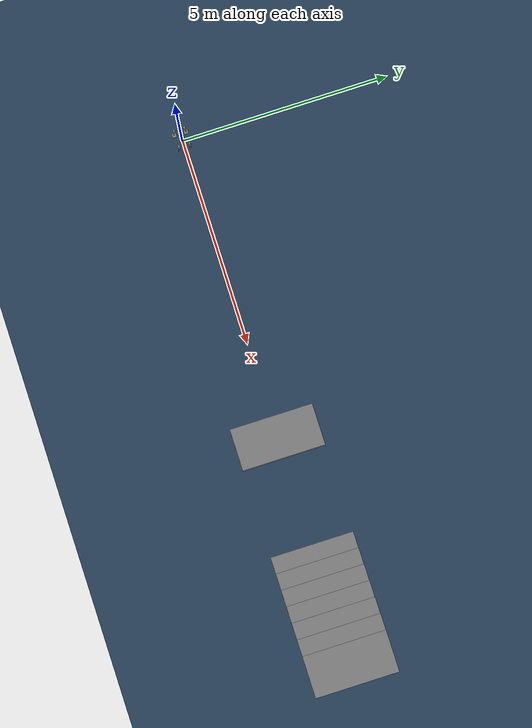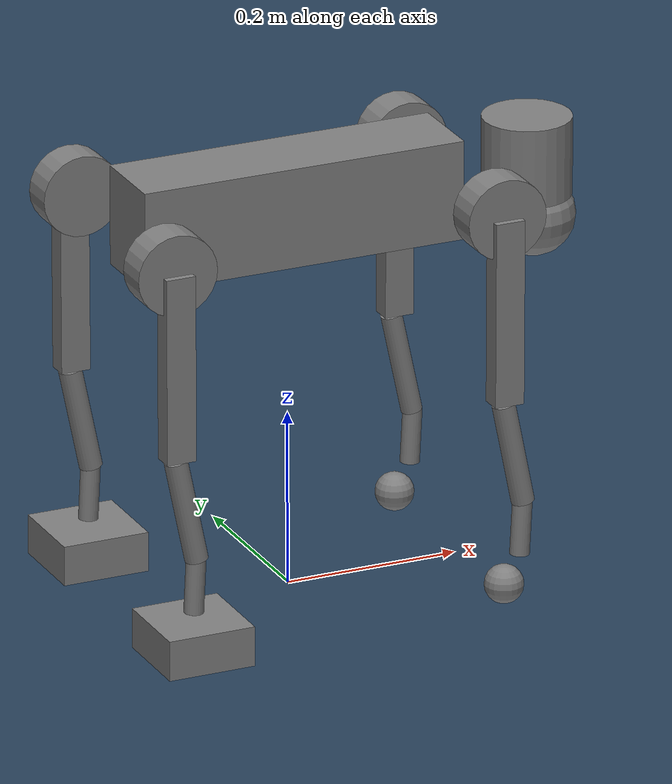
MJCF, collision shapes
<mujoco model="go2 biped scene">
  <include file="go2_biped.xml"/>

  <statistic center="0 0 0.1" extent="0.8"/>

  <visual>
    <headlight diffuse="0.6 0.6 0.6" ambient="0.3 0.3 0.3" specular="0 0 0"/>
    <rgba haze="0.15 0.25 0.35 1"/>
    <global azimuth="-130" elevation="-20"/>
  </visual>

  <asset>
    <texture type="skybox" builtin="gradient" rgb1="0.3 0.5 0.7" rgb2="0 0 0" width="512" height="3072"/>
    <texture type="2d" name="groundplane" builtin="checker" mark="edge" rgb1="0.2 0.3 0.4" rgb2="0.1 0.2 0.3"
      markrgb="0.8 0.8 0.8" width="300" height="300"/>
    <material name="groundplane" texture="groundplane" texuniform="true" texrepeat="5 5" reflectance="0.2"/>
  </asset>

  <worldbody>
    <light pos="0 0 1.5" dir="0 0 -1" directional="true"/>
    <geom name="floor" size="0 0 0.05" type="plane" material="groundplane"/>

    <!-- Slope -->
      <body name="single_staircase" pos="7 0 0.12">
            <geom type="box" size="0.5 1 0.12" pos="0.3 0 0.0" rgba="0.5 0.5 0.5 1"/>
      </body>

      <body name="staircases" pos="10 0 0.075">
            <geom type="box" size="0.5 1 0.075" pos="0.4 0 0.0" rgba="0.5 0.5 0.5 1"/>
            <geom type="box" size="0.5 1 0.075" pos="0.8 0 0.15" rgba="0.5 0.5 0.5 1"/>
            <geom type="box" size="0.5 1 0.075" pos="1.2 0 0.3" rgba="0.5 0.5 0.5 1"/>
            <geom type="box" size="0.5 1 0.075" pos="1.6 0 0.45" rgba="0.5 0.5 0.5 1"/>
            <geom type="box" size="0.5 1 0.075" pos="2.0 0 0.6" rgba="0.5 0.5 0.5 1"/>
            <geom type="box" size="0.5 1 0.075" pos="2.4 0 0.75" rgba="0.5 0.5 0.5 1"/>
            <geom type="box" size="0.5 1 0.075" pos="2.8 0 0.9" rgba="0.5 0.5 0.5 1"/>
      </body>

  </worldbody>
</mujoco>

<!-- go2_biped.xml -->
<mujoco model="go2">
  <compiler angle="radian" meshdir="assets" autolimits="true" eulerseq="xyz" />

  <option cone="elliptic" impratio="100" />

  <default>
    <default class="go2">
      <geom friction="0.4" margin="0.001" condim="1"/>
      <joint axis="0 1 0" damping="0.1" armature="0.01" frictionloss="0.2"/>
      <motor ctrlrange="-23.7 23.7"/>
      <default class="abduction">
        <joint axis="1 0 0" range="-1.0472 1.0472"/>
      </default>
      <default class="hip">
        <default class="front_hip">
          <joint range="-1.5708 3.4907"/>
        </default>
        <default class="back_hip">
          <joint range="-0.5236 4.5379"/>
        </default>
      </default>
      <default class="knee">
        <joint range="-2.7227 -0.83776"/>
        <motor ctrlrange="-45.43 45.43"/>
      </default>
      <default class="visual">
        <geom type="mesh" contype="0" conaffinity="0" group="2"/>
      </default>
      <default class="collision">
        <geom group="3"/>
        <default class="foot_static">
          <geom size="0.022" pos="-0.002 0 -0.213" priority="1" condim="6"
            friction="0.6 0.02 0.01"/>
        </default>
        <default class="foot">
          <geom type="box" size="0.05 0.05 0.026" pos="0.018 0 -0.213" priority="1" condim="6"
            friction="0.6 0.02 0.01"/>
          <motor ctrlrange="-10.0 10.0"/>
          <joint range="-0.3 0.8"/>
        </default>
      </default>
    </default>
  </default>

  <asset>
    <material name="metal" rgba=".9 .95 .95 1" />
    <material name="black" rgba="0 0 0 1" />
    <material name="white" rgba="1 1 1 1" />
    <material name="gray" rgba="0.671705 0.692426 0.774270 1" />

    <mesh file="base_0.obj" />
    <mesh file="base_1.obj" />
    <mesh file="base_2.obj" />
    <mesh file="base_3.obj" />
    <mesh file="base_4.obj" />
    <mesh file="hip_0.obj" />
    <mesh file="hip_1.obj" />
    <mesh file="thigh_0.obj" />
    <mesh file="thigh_1.obj" />
    <mesh file="thigh_mirror_0.obj" />
    <mesh file="thigh_mirror_1.obj" />
    <mesh file="calf_0.obj" />
    <mesh file="calf_1.obj" />
    <mesh file="calf_mirror_0.obj" />
    <mesh file="calf_mirror_1.obj" />
    <mesh file="foot_static.obj" />
    <mesh file="foot.obj" />
  </asset>

  <worldbody>
    <body name="base_link" pos="0 0 0.445" childclass="go2">
      <inertial pos="0.021112 0 -0.005366" quat="-0.000543471 0.713435 -0.00173769 0.700719"
        mass="6.921"
        diaginertia="0.107027 0.0980771 0.0244531" />
      <freejoint />
      <geom mesh="base_0" material="black" class="visual" />
      <geom mesh="base_1" material="black" class="visual" />
      <geom mesh="base_2" material="black" class="visual" />
      <geom mesh="base_3" material="white" class="visual" />
      <geom mesh="base_4" material="gray" class="visual" />
      <geom size="0.1881 0.04675 0.057" type="box" class="collision" />
      <geom size="0.05 0.045" pos="0.285 0 0.01" type="cylinder" class="collision" />
      <geom size="0.047" pos="0.293 0 -0.06" class="collision" />
      <site name="imu" pos="-0.02557 0 0.04232" />
      <camera name="depth_camera" pos="0.315 0 0.09" euler="0 -1.57 -1.57" mode="fixed"
              fovy="62"/>
      <body name="FL_hip" pos="0.1934 0.0465 0">
        <inertial pos="-0.0054 0.00194 -0.000105" quat="0.497014 0.499245 0.505462 0.498237"
          mass="0.678"
          diaginertia="0.00088403 0.000596003 0.000479967" />
        <joint name="FL_hip_joint" class="abduction" />
        <geom mesh="hip_0" material="metal" class="visual" />
        <geom mesh="hip_1" material="gray" class="visual" />
        <geom size="0.046 0.02" pos="0 0.08 0" quat="1 1 0 0" type="cylinder" class="collision" />
        <body name="FL_thigh" pos="0 0.0955 0">
          <inertial pos="-0.00374 -0.0223 -0.0327" quat="0.829533 0.0847635 -0.0200632 0.551623"
            mass="1.152"
            diaginertia="0.00594973 0.00584149 0.000878787" />
          <joint name="FL_thigh_joint" class="front_hip" />
          <geom mesh="thigh_0" material="metal" class="visual" />
          <geom mesh="thigh_1" material="gray" class="visual" />
          <geom size="0.1065 0.01225 0.017" pos="0 0 -0.1065" quat="0.707107 0 0.707107 0"
            type="box" class="collision" />
          <body name="FL_calf" pos="0 0 -0.213">
            <inertial pos="0.00629595 -0.000622121 -0.141417"
              quat="0.710672 0.00154099 -0.00450087 0.703508"
              mass="0.241352" diaginertia="0.0014901 0.00146356 5.31397e-05" />
            <joint name="FL_calf_joint" class="knee" />
            <geom mesh="calf_0" material="gray" class="visual" />
            <geom mesh="calf_1" material="black" class="visual" />
            <geom size="0.012 0.06" pos="0.008 0 -0.06" quat="0.994493 0 -0.104807 0"
              type="cylinder" class="collision" />
            <geom size="0.011 0.0325" pos="0.02 0 -0.148" quat="0.999688 0 0.0249974 0"
              type="cylinder" class="collision" />
            <body name="FL_foot" pos="0 0 -0.213">
              <inertial pos="0 0 0" quat="1 0 0 0" mass="0.04"
                diaginertia="9.6e-06 9.6e-06 9.6e-06" />
              <geom mesh="foot_static" class="visual" material="black" pos="0 0 0" />
              <geom name="FL" class="foot_static" pos="0 0 0" />
            </body>
          </body>
        </body>
      </body>
      <body name="FR_hip" pos="0.1934 -0.0465 0">
        <inertial pos="-0.0054 -0.00194 -0.000105" quat="0.498237 0.505462 0.499245 0.497014"
          mass="0.678"
          diaginertia="0.00088403 0.000596003 0.000479967" />
        <joint name="FR_hip_joint" class="abduction" />
        <geom mesh="hip_0" material="metal" class="visual" quat="4.63268e-05 1 0 0" />
        <geom mesh="hip_1" material="gray" class="visual" quat="4.63268e-05 1 0 0" />
        <geom size="0.046 0.02" pos="0 -0.08 0" quat="0.707107 0.707107 0 0" type="cylinder"
          class="collision" />
        <body name="FR_thigh" pos="0 -0.0955 0">
          <inertial pos="-0.00374 0.0223 -0.0327" quat="0.551623 -0.0200632 0.0847635 0.829533"
            mass="1.152"
            diaginertia="0.00594973 0.00584149 0.000878787" />
          <joint name="FR_thigh_joint" class="front_hip" />
          <geom mesh="thigh_mirror_0" material="metal" class="visual" />
          <geom mesh="thigh_mirror_1" material="gray" class="visual" />
          <geom size="0.1065 0.01225 0.017" pos="0 0 -0.1065" quat="0.707107 0 0.707107 0"
            type="box" class="collision" />
          <body name="FR_calf" pos="0 0 -0.213">
            <inertial pos="0.00629595 0.000622121 -0.141417"
              quat="0.703508 -0.00450087 0.00154099 0.710672"
              mass="0.241352" diaginertia="0.0014901 0.00146356 5.31397e-05" />
            <joint name="FR_calf_joint" class="knee" />
            <geom mesh="calf_mirror_0" material="gray" class="visual" />
            <geom mesh="calf_mirror_1" material="black" class="visual" />
            <geom size="0.013 0.06" pos="0.01 0 -0.06" quat="0.995004 0 -0.0998334 0"
              type="cylinder" class="collision" />
            <geom size="0.011 0.0325" pos="0.02 0 -0.148" quat="0.999688 0 0.0249974 0"
              type="cylinder" class="collision" />
            <body name="FR_foot" pos="0 0 -0.213">
              <inertial pos="0 0 0" quat="1 0 0 0" mass="0.04"
                diaginertia="9.6e-06 9.6e-06 9.6e-06" />
              <geom mesh="foot_static" class="visual" material="black" pos="0 0 0" />
              <geom name="FR" class="foot_static" pos="0 0 0" />
            </body>
          </body>
        </body>
      </body>
      <body name="RL_hip" pos="-0.1934 0.0465 0">
        <inertial pos="0.0054 0.00194 -0.000105" quat="0.505462 0.498237 0.497014 0.499245"
          mass="0.678"
          diaginertia="0.00088403 0.000596003 0.000479967" />
        <joint name="RL_hip_joint" class="abduction" />
        <geom mesh="hip_0" material="metal" class="visual" quat="4.63268e-05 0 1 0" />
        <geom mesh="hip_1" material="gray" class="visual" quat="4.63268e-05 0 1 0" />
        <geom size="0.046 0.02" pos="0 0.08 0" quat="0.707107 0.707107 0 0" type="cylinder"
          class="collision" />
        <body name="RL_thigh" pos="0 0.0955 0">
          <inertial pos="-0.00374 -0.0223 -0.0327" quat="0.829533 0.0847635 -0.0200632 0.551623"
            mass="1.152"
            diaginertia="0.00594973 0.00584149 0.000878787" />
          <joint name="RL_thigh_joint" class="back_hip" />
          <geom mesh="thigh_0" material="metal" class="visual" />
          <geom mesh="thigh_1" material="gray" class="visual" />
          <geom size="0.1065 0.01225 0.017" pos="0 0 -0.1065" quat="0.707107 0 0.707107 0"
            type="box" class="collision" />
          <body name="RL_calf" pos="0 0 -0.213">
            <inertial pos="0.00629595 -0.000622121 -0.141417"
              quat="0.710672 0.00154099 -0.00450087 0.703508"
              mass="0.241352" diaginertia="0.0014901 0.00146356 5.31397e-05" />
            <joint name="RL_calf_joint" class="knee" />
            <geom mesh="calf_0" material="gray" class="visual" />
            <geom mesh="calf_1" material="black" class="visual" />
            <geom size="0.013 0.06" pos="0.01 0 -0.06" quat="0.995004 0 -0.0998334 0"
              type="cylinder" class="collision" />
            <geom size="0.011 0.0325" pos="0.02 0 -0.148" quat="0.999688 0 0.0249974 0"
              type="cylinder" class="collision" />
            <body name="RL_foot" pos="0.018 0 -0.213" >
              <joint name="RL_foot_joint" class="foot" />
              <inertial pos="0 0 0" quat="1 0 0 0" mass="0.04"
                diaginertia="9.6e-06 9.6e-06 9.6e-06" />
              <geom mesh="foot" class="visual" material="gray" pos="0 0 -0.028" quat="0.707106 0 0 0.707106"/>
              <geom name="RL" class="foot" pos="0 0 0" />
            </body>

          </body>
        </body>
      </body>
      <body name="RR_hip" pos="-0.1934 -0.0465 0">
        <inertial pos="0.0054 -0.00194 -0.000105" quat="0.499245 0.497014 0.498237 0.505462"
          mass="0.678"
          diaginertia="0.00088403 0.000596003 0.000479967" />
        <joint name="RR_hip_joint" class="abduction" />
        <geom mesh="hip_0" material="metal" class="visual"
          quat="2.14617e-09 4.63268e-05 4.63268e-05 -1" />
        <geom mesh="hip_1" material="gray" class="visual"
          quat="2.14617e-09 4.63268e-05 4.63268e-05 -1" />
        <geom size="0.046 0.02" pos="0 -0.08 0" quat="0.707107 0.707107 0 0" type="cylinder"
          class="collision" />
        <body name="RR_thigh" pos="0 -0.0955 0">
          <inertial pos="-0.00374 0.0223 -0.0327" quat="0.551623 -0.0200632 0.0847635 0.829533"
            mass="1.152"
            diaginertia="0.00594973 0.00584149 0.000878787" />
          <joint name="RR_thigh_joint" class="back_hip" />
          <geom mesh="thigh_mirror_0" material="metal" class="visual" />
          <geom mesh="thigh_mirror_1" material="gray" class="visual" />
          <geom size="0.1065 0.01225 0.017" pos="0 0 -0.1065" quat="0.707107 0 0.707107 0"
            type="box" class="collision" />
          <body name="RR_calf" pos="0 0 -0.213">
            <inertial pos="0.00629595 0.000622121 -0.141417"
              quat="0.703508 -0.00450087 0.00154099 0.710672"
              mass="0.241352" diaginertia="0.0014901 0.00146356 5.31397e-05" />
            <joint name="RR_calf_joint" class="knee" />
            <geom mesh="calf_mirror_0" material="gray" class="visual" />
            <geom mesh="calf_mirror_1" material="black" class="visual" />
            <geom size="0.013 0.06" pos="0.01 0 -0.06" quat="0.995004 0 -0.0998334 0"
              type="cylinder" class="collision" />
            <geom size="0.011 0.0325" pos="0.02 0 -0.148" quat="0.999688 0 0.0249974 0"
              type="cylinder" class="collision" />
            <body name="RR_foot" pos="0.018 0 -0.213">
              <joint name="RR_foot_joint" class="foot" />
              <inertial pos="0 0 0" quat="1 0 0 0" mass="0.04"
                diaginertia="9.6e-06 9.6e-06 9.6e-06" />
              <geom mesh="foot" class="visual" material="gray" pos="0 0 -0.028" quat="0.707106 0 0 0.707106"/>
              <geom name="RR" class="foot" pos="0 0 0" />
            </body>

          </body>
        </body>
      </body>
    </body>
  </worldbody>

  <actuator>
    <motor class="abduction" name="FR_hip" joint="FR_hip_joint" />
    <motor class="hip" name="FR_thigh" joint="FR_thigh_joint" />
    <motor class="knee" name="FR_calf" joint="FR_calf_joint" />
    <motor class="abduction" name="FL_hip" joint="FL_hip_joint" />
    <motor class="hip" name="FL_thigh" joint="FL_thigh_joint" />
    <motor class="knee" name="FL_calf" joint="FL_calf_joint" />
    <motor class="abduction" name="RR_hip" joint="RR_hip_joint" />
    <motor class="hip" name="RR_thigh" joint="RR_thigh_joint" />
    <motor class="knee" name="RR_calf" joint="RR_calf_joint" />
    <motor class="foot" name="RR_foot" joint="RR_foot_joint" />
    <motor class="abduction" name="RL_hip" joint="RL_hip_joint" />
    <motor class="hip" name="RL_thigh" joint="RL_thigh_joint" />
    <motor class="knee" name="RL_calf" joint="RL_calf_joint" />
    <motor class="foot" name="RL_foot" joint="RL_foot_joint" />
  </actuator>

  <sensor>
    <jointpos name="FR_hip_pos" joint="FR_hip_joint" />
    <jointpos name="FR_thigh_pos" joint="FR_thigh_joint" />
    <jointpos name="FR_calf_pos" joint="FR_calf_joint" />
    <jointpos name="FL_hip_pos" joint="FL_hip_joint" />
    <jointpos name="FL_thigh_pos" joint="FL_thigh_joint" />
    <jointpos name="FL_calf_pos" joint="FL_calf_joint" />
    <jointpos name="RR_hip_pos" joint="RR_hip_joint" />
    <jointpos name="RR_thigh_pos" joint="RR_thigh_joint" />
    <jointpos name="RR_calf_pos" joint="RR_calf_joint" />
    <jointpos name="RR_foot_pos" joint="RR_foot_joint" />
    <jointpos name="RL_hip_pos" joint="RL_hip_joint" />
    <jointpos name="RL_thigh_pos" joint="RL_thigh_joint" />
    <jointpos name="RL_calf_pos" joint="RL_calf_joint" />
    <jointpos name="RL_foot_pos" joint="RL_foot_joint" />

    <jointvel name="FR_hip_vel" joint="FR_hip_joint" />
    <jointvel name="FR_thigh_vel" joint="FR_thigh_joint" />
    <jointvel name="FR_calf_vel" joint="FR_calf_joint" />
    <jointvel name="FL_hip_vel" joint="FL_hip_joint" />
    <jointvel name="FL_thigh_vel" joint="FL_thigh_joint" />
    <jointvel name="FL_calf_vel" joint="FL_calf_joint" />
    <jointvel name="RR_hip_vel" joint="RR_hip_joint" />
    <jointvel name="RR_thigh_vel" joint="RR_thigh_joint" />
    <jointvel name="RR_calf_vel" joint="RR_calf_joint" />
    <jointvel name="RR_foot_vel" joint="RR_foot_joint" />
    <jointvel name="RL_hip_vel" joint="RL_hip_joint" />
    <jointvel name="RL_thigh_vel" joint="RL_thigh_joint" />
    <jointvel name="RL_calf_vel" joint="RL_calf_joint" />
    <jointvel name="RL_foot_vel" joint="RL_foot_joint" />

    <jointactuatorfrc name="FR_hip_torque" joint="FR_hip_joint" noise="0.01" />
    <jointactuatorfrc name="FR_thigh_torque" joint="FR_thigh_joint" noise="0.01" />
    <jointactuatorfrc name="FR_calf_torque" joint="FR_calf_joint" noise="0.01" />
    <jointactuatorfrc name="FL_hip_torque" joint="FL_hip_joint" noise="0.01" />
    <jointactuatorfrc name="FL_thigh_torque" joint="FL_thigh_joint" noise="0.01" />
    <jointactuatorfrc name="FL_calf_torque" joint="FL_calf_joint" noise="0.01" />
    <jointactuatorfrc name="RR_hip_torque" joint="RR_hip_joint" noise="0.01" />
    <jointactuatorfrc name="RR_thigh_torque" joint="RR_thigh_joint" noise="0.01" />
    <jointactuatorfrc name="RR_calf_torque" joint="RR_calf_joint" noise="0.01" />
    <jointactuatorfrc name="RR_foot_torque" joint="RR_foot_joint" noise="0.01" />
    <jointactuatorfrc name="RL_hip_torque" joint="RL_hip_joint" noise="0.01" />
    <jointactuatorfrc name="RL_thigh_torque" joint="RL_thigh_joint" noise="0.01" />
    <jointactuatorfrc name="RL_calf_torque" joint="RL_calf_joint" noise="0.01" />
    <jointactuatorfrc name="RL_foot_torque" joint="RL_foot_joint" noise="0.01" />

    <framequat name="imu_quat" objtype="site" objname="imu" />
    <gyro name="imu_gyro" site="imu" />
    <accelerometer name="imu_acc" site="imu" />

    <framepos name="frame_pos" objtype="site" objname="imu" />
    <framelinvel name="frame_vel" objtype="site" objname="imu" />
  </sensor>

  <keyframe>
    <key name="home"
      qpos="0 0 0.27 1 0 0 0 0 0.9 -1.8 0 0.9 -1.8 0 0.9 -1.8 0 0 0.9 -1.8 0"
      ctrl="0 0.9 -1.8 0 0.9 -1.8 0 0.9 -1.8 0 0 0.9 -1.8 0" />
  </keyframe>
</mujoco>
